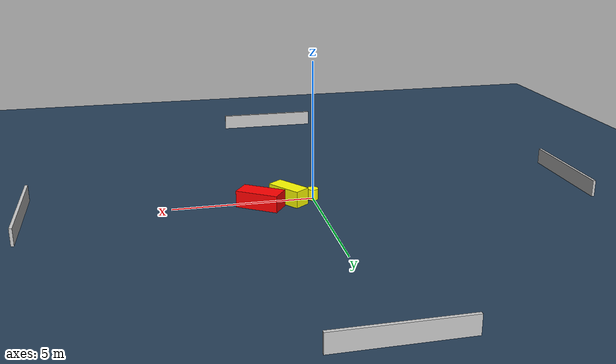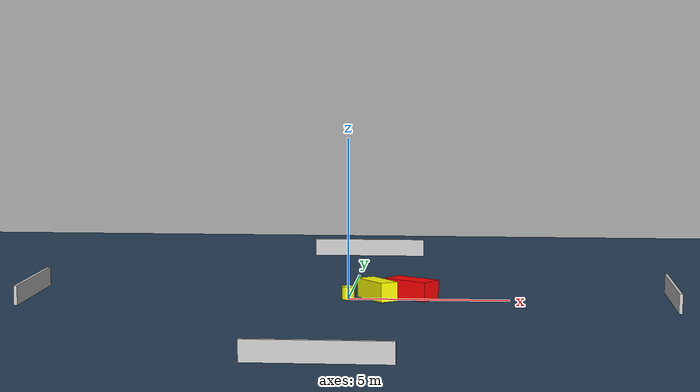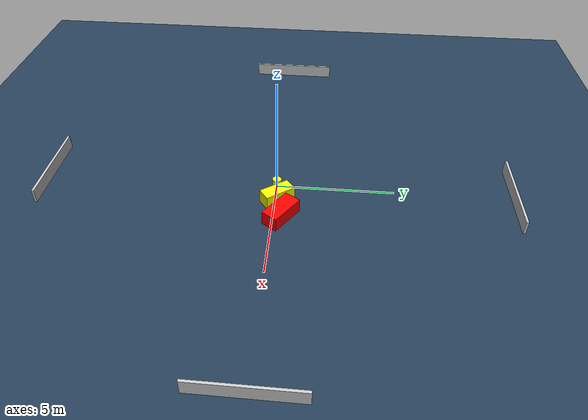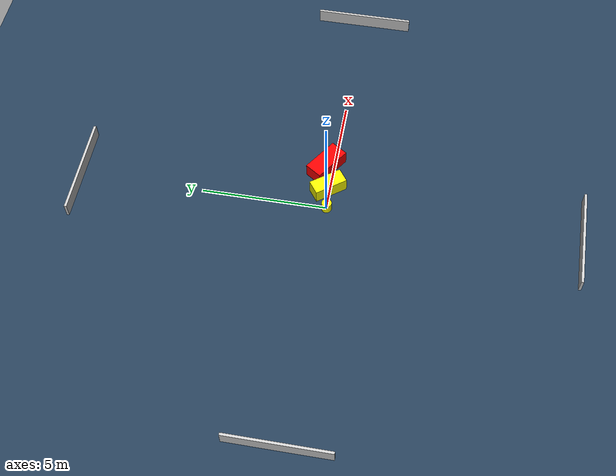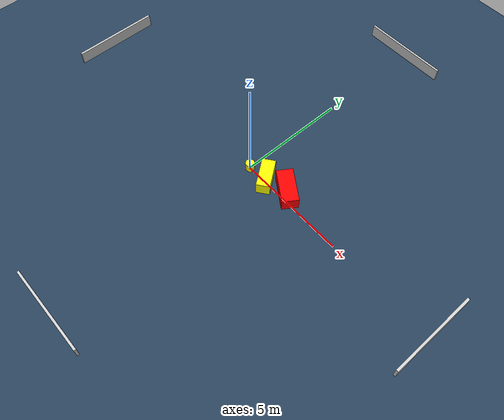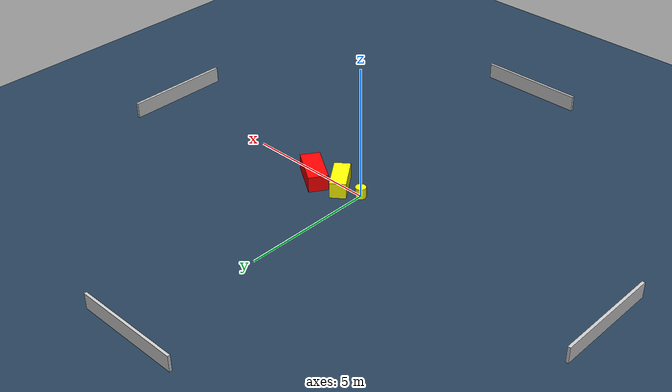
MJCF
<?xml version="1.0" ?>
<mujoco model="generated_environment">
  <option timestep="0.01" integrator="RK4" cone="elliptic"/>
  <default>
    <geom density="1"/>
  </default>
  <asset>
    <texture builtin="gradient" height="3072" name="skybox" rgb1="0.3 0.5 0.7" rgb2="0 0 0" type="skybox" width="512"/>
    <texture builtin="checker" height="300" name="groundplane" rgb1="0.2 0.3 0.4" rgb2="0.1 0.2 0.3" type="2d" width="300"/>
    <material name="groundplane" reflectance="0.2" texrepeat="5 5" texture="groundplane"/>
  </asset>
  <worldbody>
    <light dir="0 0 -1" directional="true" pos="0 0 1.5"/>
    <geom condim="3" friction="0.5 0.005 0.001" material="groundplane" name="floor" pos="0 0 0" size="0 0 0.05" type="plane"/>
    <body name="walls">
      <geom name="wall_1" condim="4" pos="-10.0 0.0 0.3" rgba="0.800000011920929 0.800000011920929 0.800000011920929 1.0" size="0.05 2.0 0.3" type="box"/>
      <geom name="wall_2" condim="4" pos="10.0 0.0 0.3" rgba="0.800000011920929 0.800000011920929 0.800000011920929 1.0" size="0.05 2.0 0.3" type="box"/>
      <geom name="wall_3" condim="4" pos="0.0 -10.0 0.3" rgba="0.800000011920929 0.800000011920929 0.800000011920929 1.0" size="2.0 0.05 0.3" type="box"/>
      <geom name="wall_4" condim="4" pos="0.0 10.0 0.3" rgba="0.800000011920929 0.800000011920929 0.800000011920929 1.0" size="2.0 0.05 0.3" type="box"/>
    </body>
    <body name="robot">
      <joint name="joint_x" type="slide" pos="0 0 0" axis="1 0 0"/>
      <joint name="joint_y" type="slide" pos="0 0 0" axis="0 1 0"/>
      <geom name="robot" type="cylinder" pos="0.0 0.0 0.2" size="0.2 0.2 0.0" mass="5.0" friction="1.0 0.005 0.0001" condim="4" rgba="1.0 1.0 0.0 1.0"/>
    </body>
    <body name="obstacle_1_movable">
      <geom name="obstacle_1_movable" condim="4" pos="0.9063827389814352 0.09453504378411928 0.3" euler="0 0 306.5798944877689" friction="0.0 0.005 0.001" rgba="1.0 1.0 0.0 1.0" size="0.6715189195939882 0.2997899669533992 0.3" type="box" mass="0.1"/>
      <joint type="free"/>
    </body>
    <body name="obstacle_2_static">
      <geom name="obstacle_2_static" condim="4" pos="1.9513262488968532 0.3448629434762907 0.3" euler="0 0 56.37526094353128" friction="0.0 0.005 0.001" rgba="1.0 0.0 0.0 1.0" size="0.36538706582514713 0.776002527644283 0.3" type="box"/>
    </body>
  </worldbody>
  <actuator>
    <motor name="actuator_x" joint="joint_x" gear="1" ctrlrange="-1 1"/>
    <motor name="actuator_y" joint="joint_y" gear="1" ctrlrange="-1 1"/>
  </actuator>
</mujoco>
